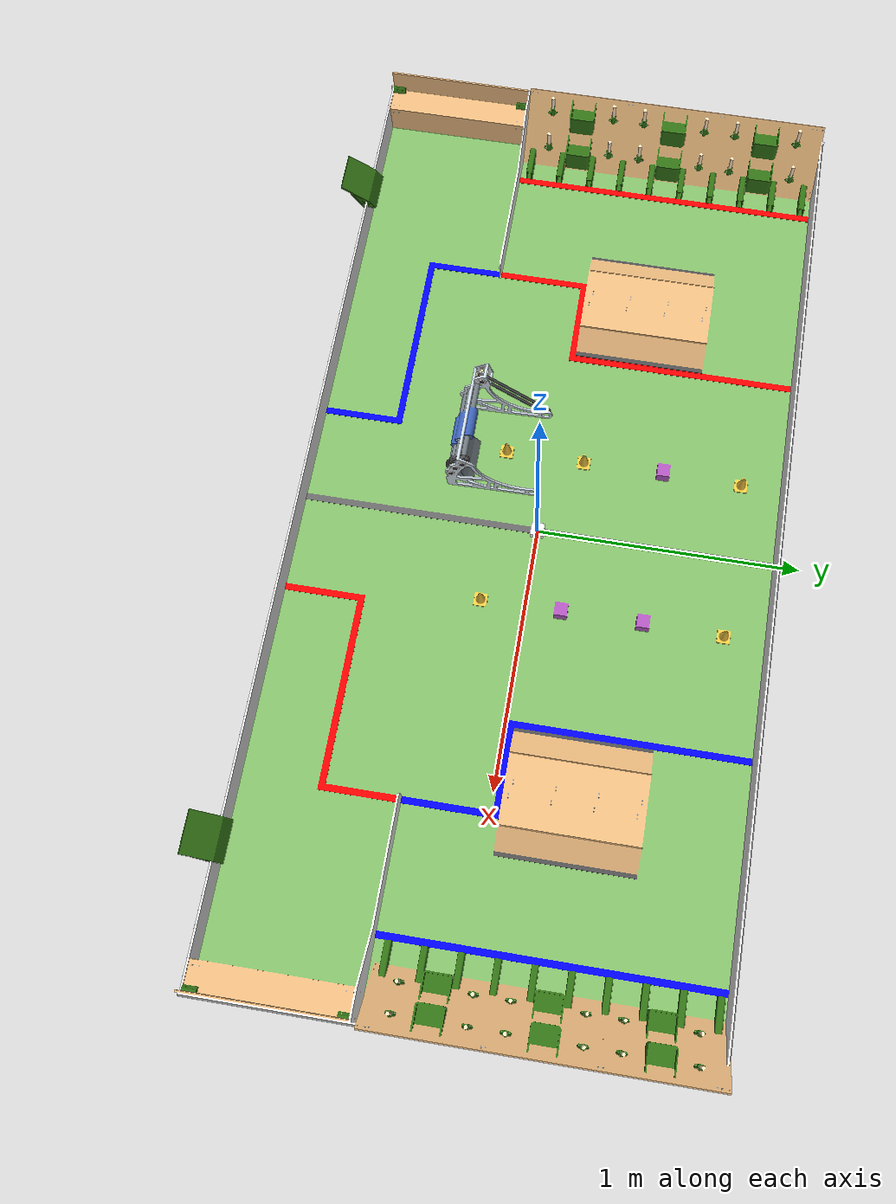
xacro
<?xml version="1.0"?>
<robot name="visual">

<material name="blue">
    <color rgba="0 0 0.8 1"/>
  </material>
  <material name="black">
    <color rgba="0 0 0 1"/>
  </material>
  <material name="white">
    <color rgba="1 1 1 1"/>
  </material>

  <link name="base_link">
  </link>

  <link name="head">
  </link>

  <joint name="turret_joint" type="continuous">
    <parent link="base_link"/>
    <child link="head"/>
    <axis xyz="0 0 1"/>
    <origin xyz="0 0 0.0"/>
  </joint>

  <link name="box">
    <visual>
      <geometry>
        <mesh filename="package://turret_2023/meshes/CITRUS_TURRET_HOOD.dae"/>
      </geometry>
    </visual>
  </link>

  <joint name="tobox" type="fixed">
    <parent link="head"/>
    <child link="box"/>
    <origin xyz="0.0 0 0.0"/>
  </joint>

  <joint name="to_field" type="fixed">
    <parent link="base_link"/>
    <child link="full_field"/>
    <origin xyz="0.0 0 0.0"/>
  </joint>

  <link name="full_field">
    <parent link="base_link"/>
    <visual>
      <origin rpy="0.0 0 0" xyz="0 0 0"/>
      <geometry>
        <mesh filename="package://turret_2023/meshes/MINIFRC_FIELD.dae"/>
      </geometry>
    </visual>
  </link>

</robot>
